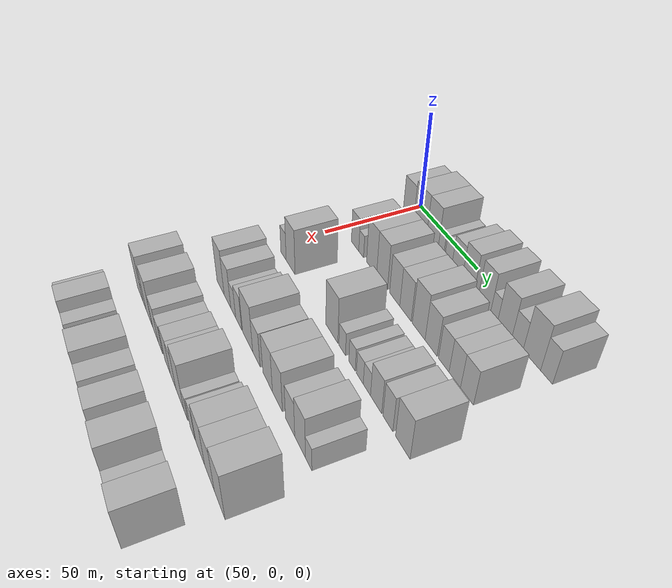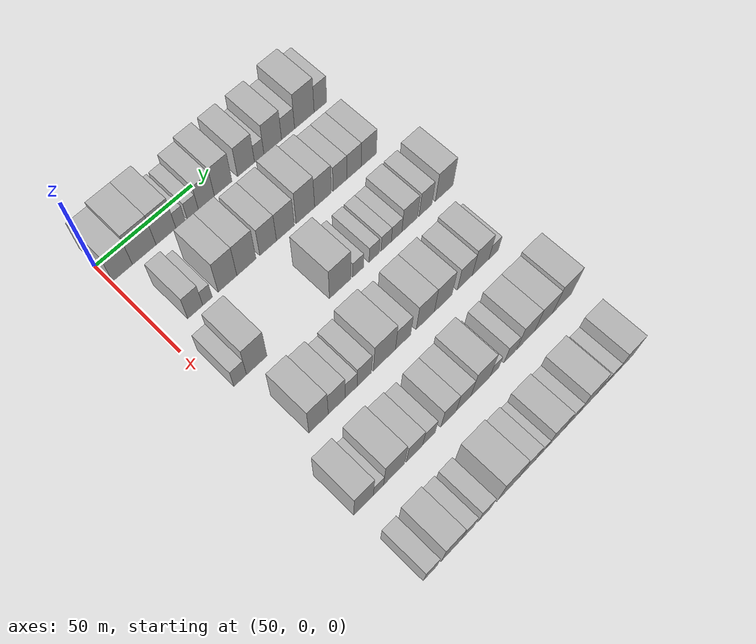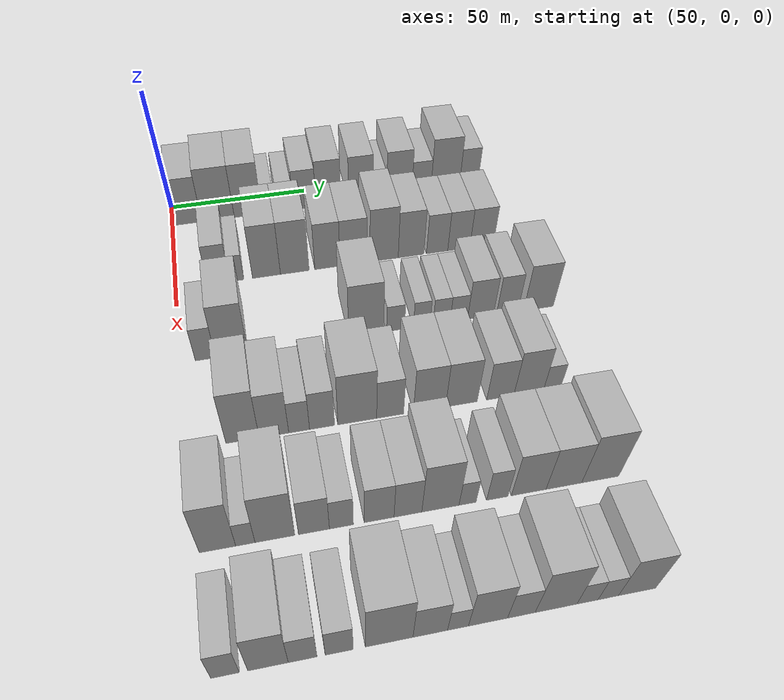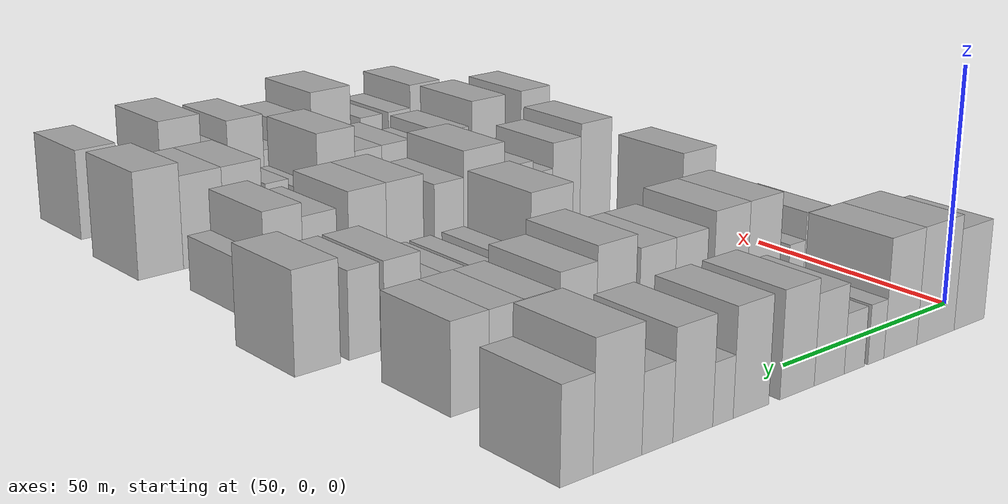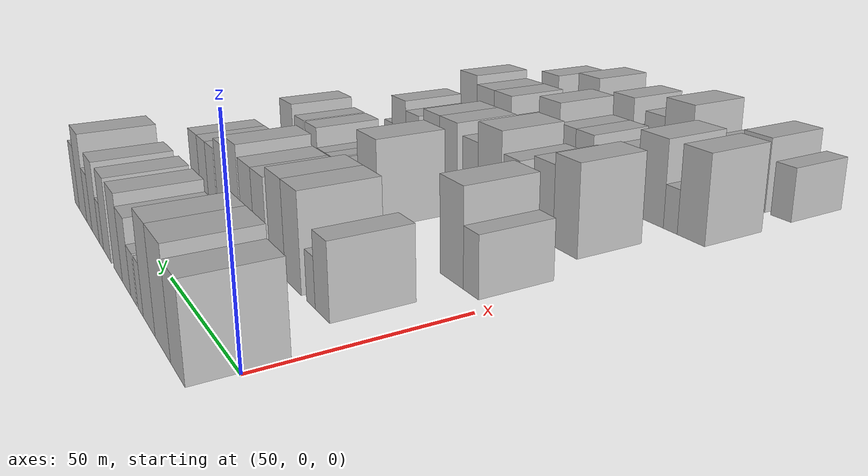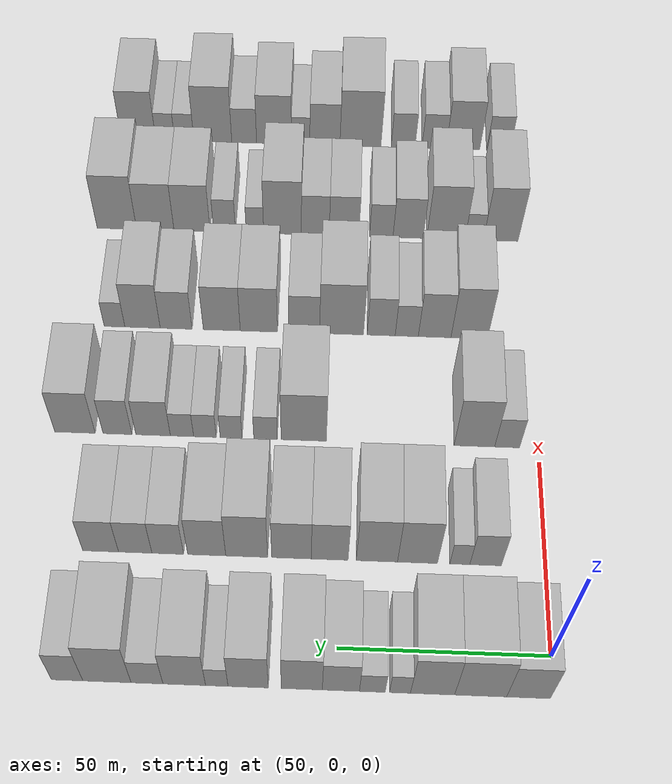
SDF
<sdf version="1.6">
 <world name="default">
  <model name="building_62">
   <static>1</static>
   <pose>50.0000 5.6980 0 0.000000 0.000000 0.000000</pose>
   <link name="link">
    <pose>0 0 10.50 0 0 0</pose>
    <collision name="collision"><geometry><box><size>20.0000 10.0300 21.0000</size></box></geometry></collision>
    <visual name="visual">
     <cast_shadows>0</cast_shadows>
     <geometry><box><size>20.0000 10.0300 21.0000</size></box></geometry>
     <material>
      <script>
       <uri>model://HANNAS_wall/materials/scripts</uri>
       <uri>model://HANNAS_wall/materials/textures</uri>
       <name>vrc/HANNAS_wall</name>
      </script>
     </material>
    </visual>
   </link>
  </model>
  <model name="building_63">
   <static>1</static>
   <pose>50.0000 16.6982 0 0.000000 0.000000 0.000000</pose>
   <link name="link">
    <pose>0 0 12.00 0 0 0</pose>
    <collision name="collision"><geometry><box><size>20.0000 11.9703 24.0000</size></box></geometry></collision>
    <visual name="visual">
     <cast_shadows>0</cast_shadows>
     <geometry><box><size>20.0000 11.9703 24.0000</size></box></geometry>
     <material>
      <script>
       <uri>model://HANNAS_wall/materials/scripts</uri>
       <uri>model://HANNAS_wall/materials/textures</uri>
       <name>vrc/HANNAS_wall</name>
      </script>
     </material>
    </visual>
   </link>
  </model>
  <model name="building_64">
   <static>1</static>
   <pose>50.0000 27.7714 0 0.000000 0.000000 0.000000</pose>
   <link name="link">
    <pose>0 0 12.00 0 0 0</pose>
    <collision name="collision"><geometry><box><size>20.0000 10.1760 24.0000</size></box></geometry></collision>
    <visual name="visual">
     <cast_shadows>0</cast_shadows>
     <geometry><box><size>20.0000 10.1760 24.0000</size></box></geometry>
     <material>
      <script>
       <uri>model://HANNAS_wall/materials/scripts</uri>
       <uri>model://HANNAS_wall/materials/textures</uri>
       <name>vrc/HANNAS_wall</name>
      </script>
     </material>
    </visual>
   </link>
  </model>
  <model name="building_65">
   <static>1</static>
   <pose>50.0000 35.2730 0 0.000000 0.000000 0.000000</pose>
   <link name="link">
    <pose>0 0 6.00 0 0 0</pose>
    <collision name="collision"><geometry><box><size>20.0000 4.8272 12.0000</size></box></geometry></collision>
    <visual name="visual">
     <cast_shadows>0</cast_shadows>
     <geometry><box><size>20.0000 4.8272 12.0000</size></box></geometry>
     <material>
      <script>
       <uri>model://HANNAS_wall/materials/scripts</uri>
       <uri>model://HANNAS_wall/materials/textures</uri>
       <name>vrc/HANNAS_wall</name>
      </script>
     </material>
    </visual>
   </link>
  </model>
  <model name="building_66">
   <static>1</static>
   <pose>50.0000 41.6578 0 0.000000 0.000000 0.000000</pose>
   <link name="link">
    <pose>0 0 6.00 0 0 0</pose>
    <collision name="collision"><geometry><box><size>20.0000 5.9424 12.0000</size></box></geometry></collision>
    <visual name="visual">
     <cast_shadows>0</cast_shadows>
     <geometry><box><size>20.0000 5.9424 12.0000</size></box></geometry>
     <material>
      <script>
       <uri>model://HANNAS_wall/materials/scripts</uri>
       <uri>model://HANNAS_wall/materials/textures</uri>
       <name>vrc/HANNAS_wall</name>
      </script>
     </material>
    </visual>
   </link>
  </model>
  <model name="building_67">
   <static>1</static>
   <pose>50.0000 48.9102 0 0.000000 0.000000 0.000000</pose>
   <link name="link">
    <pose>0 0 9.00 0 0 0</pose>
    <collision name="collision"><geometry><box><size>20.0000 8.5623 18.0000</size></box></geometry></collision>
    <visual name="visual">
     <cast_shadows>0</cast_shadows>
     <geometry><box><size>20.0000 8.5623 18.0000</size></box></geometry>
     <material>
      <script>
       <uri>model://HANNAS_wall/materials/scripts</uri>
       <uri>model://HANNAS_wall/materials/textures</uri>
       <name>vrc/HANNAS_wall</name>
      </script>
     </material>
    </visual>
   </link>
  </model>
  <model name="building_68">
   <static>1</static>
   <pose>50.0000 57.9190 0 0.000000 0.000000 0.000000</pose>
   <link name="link">
    <pose>0 0 10.50 0 0 0</pose>
    <collision name="collision"><geometry><box><size>20.0000 9.4554 21.0000</size></box></geometry></collision>
    <visual name="visual">
     <cast_shadows>0</cast_shadows>
     <geometry><box><size>20.0000 9.4554 21.0000</size></box></geometry>
     <material>
      <script>
       <uri>model://HANNAS_wall/materials/scripts</uri>
       <uri>model://HANNAS_wall/materials/textures</uri>
       <name>vrc/HANNAS_wall</name>
      </script>
     </material>
    </visual>
   </link>
  </model>
  <model name="building_69">
   <static>1</static>
   <pose>50.0000 70.3135 0 0.000000 0.000000 0.000000</pose>
   <link name="link">
    <pose>0 0 10.50 0 0 0</pose>
    <collision name="collision"><geometry><box><size>20.0000 9.3337 21.0000</size></box></geometry></collision>
    <visual name="visual">
     <cast_shadows>0</cast_shadows>
     <geometry><box><size>20.0000 9.3337 21.0000</size></box></geometry>
     <material>
      <script>
       <uri>model://HANNAS_wall/materials/scripts</uri>
       <uri>model://HANNAS_wall/materials/textures</uri>
       <name>vrc/HANNAS_wall</name>
      </script>
     </material>
    </visual>
   </link>
  </model>
  <model name="building_70">
   <static>1</static>
   <pose>50.0000 77.5870 0 0.000000 0.000000 0.000000</pose>
   <link name="link">
    <pose>0 0 6.00 0 0 0</pose>
    <collision name="collision"><geometry><box><size>20.0000 5.2133 12.0000</size></box></geometry></collision>
    <visual name="visual">
     <cast_shadows>0</cast_shadows>
     <geometry><box><size>20.0000 5.2133 12.0000</size></box></geometry>
     <material>
      <script>
       <uri>model://HANNAS_wall/materials/scripts</uri>
       <uri>model://HANNAS_wall/materials/textures</uri>
       <name>vrc/HANNAS_wall</name>
      </script>
     </material>
    </visual>
   </link>
  </model>
  <model name="building_71">
   <static>1</static>
   <pose>50.0000 85.1204 0 0.000000 0.000000 0.000000</pose>
   <link name="link">
    <pose>0 0 10.50 0 0 0</pose>
    <collision name="collision"><geometry><box><size>20.0000 9.8534 21.0000</size></box></geometry></collision>
    <visual name="visual">
     <cast_shadows>0</cast_shadows>
     <geometry><box><size>20.0000 9.8534 21.0000</size></box></geometry>
     <material>
      <script>
       <uri>model://HANNAS_wall/materials/scripts</uri>
       <uri>model://HANNAS_wall/materials/textures</uri>
       <name>vrc/HANNAS_wall</name>
      </script>
     </material>
    </visual>
   </link>
  </model>
  <model name="building_72">
   <static>1</static>
   <pose>50.0000 93.7477 0 0.000000 0.000000 0.000000</pose>
   <link name="link">
    <pose>0 0 7.50 0 0 0</pose>
    <collision name="collision"><geometry><box><size>20.0000 7.4013 15.0000</size></box></geometry></collision>
    <visual name="visual">
     <cast_shadows>0</cast_shadows>
     <geometry><box><size>20.0000 7.4013 15.0000</size></box></geometry>
     <material>
      <script>
       <uri>model://HANNAS_wall/materials/scripts</uri>
       <uri>model://HANNAS_wall/materials/textures</uri>
       <name>vrc/HANNAS_wall</name>
      </script>
     </material>
    </visual>
   </link>
  </model>
  <model name="building_73">
   <static>1</static>
   <pose>50.0000 103.0483 0 0.000000 0.000000 0.000000</pose>
   <link name="link">
    <pose>0 0 12.00 0 0 0</pose>
    <collision name="collision"><geometry><box><size>20.0000 11.1998 24.0000</size></box></geometry></collision>
    <visual name="visual">
     <cast_shadows>0</cast_shadows>
     <geometry><box><size>20.0000 11.1998 24.0000</size></box></geometry>
     <material>
      <script>
       <uri>model://HANNAS_wall/materials/scripts</uri>
       <uri>model://HANNAS_wall/materials/textures</uri>
       <name>vrc/HANNAS_wall</name>
      </script>
     </material>
    </visual>
   </link>
  </model>
  <model name="building_74">
   <static>1</static>
   <pose>50.0000 112.3041 0 0.000000 0.000000 0.000000</pose>
   <link name="link">
    <pose>0 0 9.00 0 0 0</pose>
    <collision name="collision"><geometry><box><size>20.0000 7.3119 18.0000</size></box></geometry></collision>
    <visual name="visual">
     <cast_shadows>0</cast_shadows>
     <geometry><box><size>20.0000 7.3119 18.0000</size></box></geometry>
     <material>
      <script>
       <uri>model://HANNAS_wall/materials/scripts</uri>
       <uri>model://HANNAS_wall/materials/textures</uri>
       <name>vrc/HANNAS_wall</name>
      </script>
     </material>
    </visual>
   </link>
  </model>
  <model name="building_183">
   <static>1</static>
   <pose>82.0000 14.5404 0 0.000000 0.000000 0.000000</pose>
   <link name="link">
    <pose>0 0 9.00 0 0 0</pose>
    <collision name="collision"><geometry><box><size>20.0000 7.6131 18.0000</size></box></geometry></collision>
    <visual name="visual">
     <cast_shadows>0</cast_shadows>
     <geometry><box><size>20.0000 7.6131 18.0000</size></box></geometry>
     <material>
      <script>
       <uri>model://HANNAS_wall/materials/scripts</uri>
       <uri>model://HANNAS_wall/materials/textures</uri>
       <name>vrc/HANNAS_wall</name>
      </script>
     </material>
    </visual>
   </link>
  </model>
  <model name="building_184">
   <static>1</static>
   <pose>82.0000 20.7653 0 0.000000 0.000000 0.000000</pose>
   <link name="link">
    <pose>0 0 6.00 0 0 0</pose>
    <collision name="collision"><geometry><box><size>20.0000 4.8366 12.0000</size></box></geometry></collision>
    <visual name="visual">
     <cast_shadows>0</cast_shadows>
     <geometry><box><size>20.0000 4.8366 12.0000</size></box></geometry>
     <material>
      <script>
       <uri>model://HANNAS_wall/materials/scripts</uri>
       <uri>model://HANNAS_wall/materials/textures</uri>
       <name>vrc/HANNAS_wall</name>
      </script>
     </material>
    </visual>
   </link>
  </model>
  <model name="building_185">
   <static>1</static>
   <pose>82.0000 31.0296 0 0.000000 0.000000 0.000000</pose>
   <link name="link">
    <pose>0 0 12.00 0 0 0</pose>
    <collision name="collision"><geometry><box><size>20.0000 9.6920 24.0000</size></box></geometry></collision>
    <visual name="visual">
     <cast_shadows>0</cast_shadows>
     <geometry><box><size>20.0000 9.6920 24.0000</size></box></geometry>
     <material>
      <script>
       <uri>model://HANNAS_wall/materials/scripts</uri>
       <uri>model://HANNAS_wall/materials/textures</uri>
       <name>vrc/HANNAS_wall</name>
      </script>
     </material>
    </visual>
   </link>
  </model>
  <model name="building_186">
   <static>1</static>
   <pose>82.0000 40.8764 0 0.000000 0.000000 0.000000</pose>
   <link name="link">
    <pose>0 0 12.00 0 0 0</pose>
    <collision name="collision"><geometry><box><size>20.0000 10.0015 24.0000</size></box></geometry></collision>
    <visual name="visual">
     <cast_shadows>0</cast_shadows>
     <geometry><box><size>20.0000 10.0015 24.0000</size></box></geometry>
     <material>
      <script>
       <uri>model://HANNAS_wall/materials/scripts</uri>
       <uri>model://HANNAS_wall/materials/textures</uri>
       <name>vrc/HANNAS_wall</name>
      </script>
     </material>
    </visual>
   </link>
  </model>
  <model name="building_187">
   <static>1</static>
   <pose>82.0000 52.3401 0 0.000000 0.000000 0.000000</pose>
   <link name="link">
    <pose>0 0 10.50 0 0 0</pose>
    <collision name="collision"><geometry><box><size>20.0000 8.9261 21.0000</size></box></geometry></collision>
    <visual name="visual">
     <cast_shadows>0</cast_shadows>
     <geometry><box><size>20.0000 8.9261 21.0000</size></box></geometry>
     <material>
      <script>
       <uri>model://HANNAS_wall/materials/scripts</uri>
       <uri>model://HANNAS_wall/materials/textures</uri>
       <name>vrc/HANNAS_wall</name>
      </script>
     </material>
    </visual>
   </link>
  </model>
  <model name="building_188">
   <static>1</static>
   <pose>82.0000 61.6002 0 0.000000 0.000000 0.000000</pose>
   <link name="link">
    <pose>0 0 10.50 0 0 0</pose>
    <collision name="collision"><geometry><box><size>20.0000 9.5939 21.0000</size></box></geometry></collision>
    <visual name="visual">
     <cast_shadows>0</cast_shadows>
     <geometry><box><size>20.0000 9.5939 21.0000</size></box></geometry>
     <material>
      <script>
       <uri>model://HANNAS_wall/materials/scripts</uri>
       <uri>model://HANNAS_wall/materials/textures</uri>
       <name>vrc/HANNAS_wall</name>
      </script>
     </material>
    </visual>
   </link>
  </model>
  <model name="building_189">
   <static>1</static>
   <pose>82.0000 72.4950 0 0.000000 0.000000 0.000000</pose>
   <link name="link">
    <pose>0 0 12.00 0 0 0</pose>
    <collision name="collision"><geometry><box><size>20.0000 10.1958 24.0000</size></box></geometry></collision>
    <visual name="visual">
     <cast_shadows>0</cast_shadows>
     <geometry><box><size>20.0000 10.1958 24.0000</size></box></geometry>
     <material>
      <script>
       <uri>model://HANNAS_wall/materials/scripts</uri>
       <uri>model://HANNAS_wall/materials/textures</uri>
       <name>vrc/HANNAS_wall</name>
      </script>
     </material>
    </visual>
   </link>
  </model>
  <model name="building_190">
   <static>1</static>
   <pose>82.0000 82.2299 0 0.000000 0.000000 0.000000</pose>
   <link name="link">
    <pose>0 0 10.50 0 0 0</pose>
    <collision name="collision"><geometry><box><size>20.0000 9.2740 21.0000</size></box></geometry></collision>
    <visual name="visual">
     <cast_shadows>0</cast_shadows>
     <geometry><box><size>20.0000 9.2740 21.0000</size></box></geometry>
     <material>
      <script>
       <uri>model://HANNAS_wall/materials/scripts</uri>
       <uri>model://HANNAS_wall/materials/textures</uri>
       <name>vrc/HANNAS_wall</name>
      </script>
     </material>
    </visual>
   </link>
  </model>
  <model name="building_191">
   <static>1</static>
   <pose>82.0000 91.7429 0 0.000000 0.000000 0.000000</pose>
   <link name="link">
    <pose>0 0 9.00 0 0 0</pose>
    <collision name="collision"><geometry><box><size>20.0000 7.7518 18.0000</size></box></geometry></collision>
    <visual name="visual">
     <cast_shadows>0</cast_shadows>
     <geometry><box><size>20.0000 7.7518 18.0000</size></box></geometry>
     <material>
      <script>
       <uri>model://HANNAS_wall/materials/scripts</uri>
       <uri>model://HANNAS_wall/materials/textures</uri>
       <name>vrc/HANNAS_wall</name>
      </script>
     </material>
    </visual>
   </link>
  </model>
  <model name="building_192">
   <static>1</static>
   <pose>82.0000 99.6893 0 0.000000 0.000000 0.000000</pose>
   <link name="link">
    <pose>0 0 9.00 0 0 0</pose>
    <collision name="collision"><geometry><box><size>20.0000 8.1411 18.0000</size></box></geometry></collision>
    <visual name="visual">
     <cast_shadows>0</cast_shadows>
     <geometry><box><size>20.0000 8.1411 18.0000</size></box></geometry>
     <material>
      <script>
       <uri>model://HANNAS_wall/materials/scripts</uri>
       <uri>model://HANNAS_wall/materials/textures</uri>
       <name>vrc/HANNAS_wall</name>
      </script>
     </material>
    </visual>
   </link>
  </model>
  <model name="building_193">
   <static>1</static>
   <pose>82.0000 108.1332 0 0.000000 0.000000 0.000000</pose>
   <link name="link">
    <pose>0 0 9.00 0 0 0</pose>
    <collision name="collision"><geometry><box><size>20.0000 8.7468 18.0000</size></box></geometry></collision>
    <visual name="visual">
     <cast_shadows>0</cast_shadows>
     <geometry><box><size>20.0000 8.7468 18.0000</size></box></geometry>
     <material>
      <script>
       <uri>model://HANNAS_wall/materials/scripts</uri>
       <uri>model://HANNAS_wall/materials/textures</uri>
       <name>vrc/HANNAS_wall</name>
      </script>
     </material>
    </visual>
   </link>
  </model>
  <model name="building_312">
   <static>1</static>
   <pose>114.0000 8.0338 0 0.000000 0.000000 0.000000</pose>
   <link name="link">
    <pose>0 0 7.50 0 0 0</pose>
    <collision name="collision"><geometry><box><size>20.0000 6.3263 15.0000</size></box></geometry></collision>
    <visual name="visual">
     <cast_shadows>0</cast_shadows>
     <geometry><box><size>20.0000 6.3263 15.0000</size></box></geometry>
     <material>
      <script>
       <uri>model://HANNAS_wall/materials/scripts</uri>
       <uri>model://HANNAS_wall/materials/textures</uri>
       <name>vrc/HANNAS_wall</name>
      </script>
     </material>
    </visual>
   </link>
  </model>
  <model name="building_313">
   <static>1</static>
   <pose>114.0000 16.3514 0 0.000000 0.000000 0.000000</pose>
   <link name="link">
    <pose>0 0 12.00 0 0 0</pose>
    <collision name="collision"><geometry><box><size>20.0000 10.3089 24.0000</size></box></geometry></collision>
    <visual name="visual">
     <cast_shadows>0</cast_shadows>
     <geometry><box><size>20.0000 10.3089 24.0000</size></box></geometry>
     <material>
      <script>
       <uri>model://HANNAS_wall/materials/scripts</uri>
       <uri>model://HANNAS_wall/materials/textures</uri>
       <name>vrc/HANNAS_wall</name>
      </script>
     </material>
    </visual>
   </link>
  </model>
  <model name="building_314">
   <static>1</static>
   <pose>114.0000 59.7876 0 0.000000 0.000000 0.000000</pose>
   <link name="link">
    <pose>0 0 12.00 0 0 0</pose>
    <collision name="collision"><geometry><box><size>20.0000 11.5212 24.0000</size></box></geometry></collision>
    <visual name="visual">
     <cast_shadows>0</cast_shadows>
     <geometry><box><size>20.0000 11.5212 24.0000</size></box></geometry>
     <material>
      <script>
       <uri>model://HANNAS_wall/materials/scripts</uri>
       <uri>model://HANNAS_wall/materials/textures</uri>
       <name>vrc/HANNAS_wall</name>
      </script>
     </material>
    </visual>
   </link>
  </model>
  <model name="building_315">
   <static>1</static>
   <pose>114.0000 69.5327 0 0.000000 0.000000 0.000000</pose>
   <link name="link">
    <pose>0 0 6.00 0 0 0</pose>
    <collision name="collision"><geometry><box><size>20.0000 5.9689 12.0000</size></box></geometry></collision>
    <visual name="visual">
     <cast_shadows>0</cast_shadows>
     <geometry><box><size>20.0000 5.9689 12.0000</size></box></geometry>
     <material>
      <script>
       <uri>model://HANNAS_wall/materials/scripts</uri>
       <uri>model://HANNAS_wall/materials/textures</uri>
       <name>vrc/HANNAS_wall</name>
      </script>
     </material>
    </visual>
   </link>
  </model>
  <model name="building_316">
   <static>1</static>
   <pose>114.0000 78.3164 0 0.000000 0.000000 0.000000</pose>
   <link name="link">
    <pose>0 0 6.00 0 0 0</pose>
    <collision name="collision"><geometry><box><size>20.0000 5.5986 12.0000</size></box></geometry></collision>
    <visual name="visual">
     <cast_shadows>0</cast_shadows>
     <geometry><box><size>20.0000 5.5986 12.0000</size></box></geometry>
     <material>
      <script>
       <uri>model://HANNAS_wall/materials/scripts</uri>
       <uri>model://HANNAS_wall/materials/textures</uri>
       <name>vrc/HANNAS_wall</name>
      </script>
     </material>
    </visual>
   </link>
  </model>
  <model name="building_317">
   <static>1</static>
   <pose>114.0000 85.0175 0 0.000000 0.000000 0.000000</pose>
   <link name="link">
    <pose>0 0 6.00 0 0 0</pose>
    <collision name="collision"><geometry><box><size>20.0000 5.8034 12.0000</size></box></geometry></collision>
    <visual name="visual">
     <cast_shadows>0</cast_shadows>
     <geometry><box><size>20.0000 5.8034 12.0000</size></box></geometry>
     <material>
      <script>
       <uri>model://HANNAS_wall/materials/scripts</uri>
       <uri>model://HANNAS_wall/materials/textures</uri>
       <name>vrc/HANNAS_wall</name>
      </script>
     </material>
    </visual>
   </link>
  </model>
  <model name="building_318">
   <static>1</static>
   <pose>114.0000 90.8932 0 0.000000 0.000000 0.000000</pose>
   <link name="link">
    <pose>0 0 6.00 0 0 0</pose>
    <collision name="collision"><geometry><box><size>20.0000 5.9481 12.0000</size></box></geometry></collision>
    <visual name="visual">
     <cast_shadows>0</cast_shadows>
     <geometry><box><size>20.0000 5.9481 12.0000</size></box></geometry>
     <material>
      <script>
       <uri>model://HANNAS_wall/materials/scripts</uri>
       <uri>model://HANNAS_wall/materials/textures</uri>
       <name>vrc/HANNAS_wall</name>
      </script>
     </material>
    </visual>
   </link>
  </model>
  <model name="building_319">
   <static>1</static>
   <pose>114.0000 98.2979 0 0.000000 0.000000 0.000000</pose>
   <link name="link">
    <pose>0 0 9.00 0 0 0</pose>
    <collision name="collision"><geometry><box><size>20.0000 8.8612 18.0000</size></box></geometry></collision>
    <visual name="visual">
     <cast_shadows>0</cast_shadows>
     <geometry><box><size>20.0000 8.8612 18.0000</size></box></geometry>
     <material>
      <script>
       <uri>model://HANNAS_wall/materials/scripts</uri>
       <uri>model://HANNAS_wall/materials/textures</uri>
       <name>vrc/HANNAS_wall</name>
      </script>
     </material>
    </visual>
   </link>
  </model>
  <model name="building_320">
   <static>1</static>
   <pose>114.0000 107.4354 0 0.000000 0.000000 0.000000</pose>
   <link name="link">
    <pose>0 0 9.00 0 0 0</pose>
    <collision name="collision"><geometry><box><size>20.0000 7.4138 18.0000</size></box></geometry></collision>
    <visual name="visual">
     <cast_shadows>0</cast_shadows>
     <geometry><box><size>20.0000 7.4138 18.0000</size></box></geometry>
     <material>
      <script>
       <uri>model://HANNAS_wall/materials/scripts</uri>
       <uri>model://HANNAS_wall/materials/textures</uri>
       <name>vrc/HANNAS_wall</name>
      </script>
     </material>
    </visual>
   </link>
  </model>
  <model name="building_321">
   <static>1</static>
   <pose>114.0000 118.3404 0 0.000000 0.000000 0.000000</pose>
   <link name="link">
    <pose>0 0 10.50 0 0 0</pose>
    <collision name="collision"><geometry><box><size>20.0000 10.3962 21.0000</size></box></geometry></collision>
    <visual name="visual">
     <cast_shadows>0</cast_shadows>
     <geometry><box><size>20.0000 10.3962 21.0000</size></box></geometry>
     <material>
      <script>
       <uri>model://HANNAS_wall/materials/scripts</uri>
       <uri>model://HANNAS_wall/materials/textures</uri>
       <name>vrc/HANNAS_wall</name>
      </script>
     </material>
    </visual>
   </link>
  </model>
  <model name="building_428">
   <static>1</static>
   <pose>146.0000 16.8127 0 0.000000 0.000000 0.000000</pose>
   <link name="link">
    <pose>0 0 12.00 0 0 0</pose>
    <collision name="collision"><geometry><box><size>20.0000 9.7261 24.0000</size></box></geometry></collision>
    <visual name="visual">
     <cast_shadows>0</cast_shadows>
     <geometry><box><size>20.0000 9.7261 24.0000</size></box></geometry>
     <material>
      <script>
       <uri>model://HANNAS_wall/materials/scripts</uri>
       <uri>model://HANNAS_wall/materials/textures</uri>
       <name>vrc/HANNAS_wall</name>
      </script>
     </material>
    </visual>
   </link>
  </model>
  <model name="building_429">
   <static>1</static>
   <pose>146.0000 26.0240 0 0.000000 0.000000 0.000000</pose>
   <link name="link">
    <pose>0 0 10.50 0 0 0</pose>
    <collision name="collision"><geometry><box><size>20.0000 8.6965 21.0000</size></box></geometry></collision>
    <visual name="visual">
     <cast_shadows>0</cast_shadows>
     <geometry><box><size>20.0000 8.6965 21.0000</size></box></geometry>
     <material>
      <script>
       <uri>model://HANNAS_wall/materials/scripts</uri>
       <uri>model://HANNAS_wall/materials/textures</uri>
       <name>vrc/HANNAS_wall</name>
      </script>
     </material>
    </visual>
   </link>
  </model>
  <model name="building_430">
   <static>1</static>
   <pose>146.0000 33.4552 0 0.000000 0.000000 0.000000</pose>
   <link name="link">
    <pose>0 0 7.50 0 0 0</pose>
    <collision name="collision"><geometry><box><size>20.0000 6.1661 15.0000</size></box></geometry></collision>
    <visual name="visual">
     <cast_shadows>0</cast_shadows>
     <geometry><box><size>20.0000 6.1661 15.0000</size></box></geometry>
     <material>
      <script>
       <uri>model://HANNAS_wall/materials/scripts</uri>
       <uri>model://HANNAS_wall/materials/textures</uri>
       <name>vrc/HANNAS_wall</name>
      </script>
     </material>
    </visual>
   </link>
  </model>
  <model name="building_431">
   <static>1</static>
   <pose>146.0000 40.2717 0 0.000000 0.000000 0.000000</pose>
   <link name="link">
    <pose>0 0 9.00 0 0 0</pose>
    <collision name="collision"><geometry><box><size>20.0000 7.4668 18.0000</size></box></geometry></collision>
    <visual name="visual">
     <cast_shadows>0</cast_shadows>
     <geometry><box><size>20.0000 7.4668 18.0000</size></box></geometry>
     <material>
      <script>
       <uri>model://HANNAS_wall/materials/scripts</uri>
       <uri>model://HANNAS_wall/materials/textures</uri>
       <name>vrc/HANNAS_wall</name>
      </script>
     </material>
    </visual>
   </link>
  </model>
  <model name="building_432">
   <static>1</static>
   <pose>146.0000 50.8650 0 0.000000 0.000000 0.000000</pose>
   <link name="link">
    <pose>0 0 12.00 0 0 0</pose>
    <collision name="collision"><geometry><box><size>20.0000 11.7198 24.0000</size></box></geometry></collision>
    <visual name="visual">
     <cast_shadows>0</cast_shadows>
     <geometry><box><size>20.0000 11.7198 24.0000</size></box></geometry>
     <material>
      <script>
       <uri>model://HANNAS_wall/materials/scripts</uri>
       <uri>model://HANNAS_wall/materials/textures</uri>
       <name>vrc/HANNAS_wall</name>
      </script>
     </material>
    </visual>
   </link>
  </model>
  <model name="building_433">
   <static>1</static>
   <pose>146.0000 60.8373 0 0.000000 0.000000 0.000000</pose>
   <link name="link">
    <pose>0 0 9.00 0 0 0</pose>
    <collision name="collision"><geometry><box><size>20.0000 8.2250 18.0000</size></box></geometry></collision>
    <visual name="visual">
     <cast_shadows>0</cast_shadows>
     <geometry><box><size>20.0000 8.2250 18.0000</size></box></geometry>
     <material>
      <script>
       <uri>model://HANNAS_wall/materials/scripts</uri>
       <uri>model://HANNAS_wall/materials/textures</uri>
       <name>vrc/HANNAS_wall</name>
      </script>
     </material>
    </visual>
   </link>
  </model>
  <model name="building_434">
   <static>1</static>
   <pose>146.0000 72.9304 0 0.000000 0.000000 0.000000</pose>
   <link name="link">
    <pose>0 0 10.50 0 0 0</pose>
    <collision name="collision"><geometry><box><size>20.0000 9.9611 21.0000</size></box></geometry></collision>
    <visual name="visual">
     <cast_shadows>0</cast_shadows>
     <geometry><box><size>20.0000 9.9611 21.0000</size></box></geometry>
     <material>
      <script>
       <uri>model://HANNAS_wall/materials/scripts</uri>
       <uri>model://HANNAS_wall/materials/textures</uri>
       <name>vrc/HANNAS_wall</name>
      </script>
     </material>
    </visual>
   </link>
  </model>
  <model name="building_435">
   <static>1</static>
   <pose>146.0000 82.8587 0 0.000000 0.000000 0.000000</pose>
   <link name="link">
    <pose>0 0 10.50 0 0 0</pose>
    <collision name="collision"><geometry><box><size>20.0000 9.8955 21.0000</size></box></geometry></collision>
    <visual name="visual">
     <cast_shadows>0</cast_shadows>
     <geometry><box><size>20.0000 9.8955 21.0000</size></box></geometry>
     <material>
      <script>
       <uri>model://HANNAS_wall/materials/scripts</uri>
       <uri>model://HANNAS_wall/materials/textures</uri>
       <name>vrc/HANNAS_wall</name>
      </script>
     </material>
    </visual>
   </link>
  </model>
  <model name="building_436">
   <static>1</static>
   <pose>146.0000 95.0895 0 0.000000 0.000000 0.000000</pose>
   <link name="link">
    <pose>0 0 9.00 0 0 0</pose>
    <collision name="collision"><geometry><box><size>20.0000 8.5661 18.0000</size></box></geometry></collision>
    <visual name="visual">
     <cast_shadows>0</cast_shadows>
     <geometry><box><size>20.0000 8.5661 18.0000</size></box></geometry>
     <material>
      <script>
       <uri>model://HANNAS_wall/materials/scripts</uri>
       <uri>model://HANNAS_wall/materials/textures</uri>
       <name>vrc/HANNAS_wall</name>
      </script>
     </material>
    </visual>
   </link>
  </model>
  <model name="building_437">
   <static>1</static>
   <pose>146.0000 104.1161 0 0.000000 0.000000 0.000000</pose>
   <link name="link">
    <pose>0 0 10.50 0 0 0</pose>
    <collision name="collision"><geometry><box><size>20.0000 9.4870 21.0000</size></box></geometry></collision>
    <visual name="visual">
     <cast_shadows>0</cast_shadows>
     <geometry><box><size>20.0000 9.4870 21.0000</size></box></geometry>
     <material>
      <script>
       <uri>model://HANNAS_wall/materials/scripts</uri>
       <uri>model://HANNAS_wall/materials/textures</uri>
       <name>vrc/HANNAS_wall</name>
      </script>
     </material>
    </visual>
   </link>
  </model>
  <model name="building_438">
   <static>1</static>
   <pose>146.0000 111.6367 0 0.000000 0.000000 0.000000</pose>
   <link name="link">
    <pose>0 0 6.00 0 0 0</pose>
    <collision name="collision"><geometry><box><size>20.0000 5.5542 12.0000</size></box></geometry></collision>
    <visual name="visual">
     <cast_shadows>0</cast_shadows>
     <geometry><box><size>20.0000 5.5542 12.0000</size></box></geometry>
     <material>
      <script>
       <uri>model://HANNAS_wall/materials/scripts</uri>
       <uri>model://HANNAS_wall/materials/textures</uri>
       <name>vrc/HANNAS_wall</name>
      </script>
     </material>
    </visual>
   </link>
  </model>
  <model name="building_542">
   <static>1</static>
   <pose>178.0000 7.2225 0 0.000000 0.000000 0.000000</pose>
   <link name="link">
    <pose>0 0 12.00 0 0 0</pose>
    <collision name="collision"><geometry><box><size>20.0000 9.6025 24.0000</size></box></geometry></collision>
    <visual name="visual">
     <cast_shadows>0</cast_shadows>
     <geometry><box><size>20.0000 9.6025 24.0000</size></box></geometry>
     <material>
      <script>
       <uri>model://HANNAS_wall/materials/scripts</uri>
       <uri>model://HANNAS_wall/materials/textures</uri>
       <name>vrc/HANNAS_wall</name>
      </script>
     </material>
    </visual>
   </link>
  </model>
  <model name="building_543">
   <static>1</static>
   <pose>178.0000 14.5876 0 0.000000 0.000000 0.000000</pose>
   <link name="link">
    <pose>0 0 6.00 0 0 0</pose>
    <collision name="collision"><geometry><box><size>20.0000 5.1278 12.0000</size></box></geometry></collision>
    <visual name="visual">
     <cast_shadows>0</cast_shadows>
     <geometry><box><size>20.0000 5.1278 12.0000</size></box></geometry>
     <material>
      <script>
       <uri>model://HANNAS_wall/materials/scripts</uri>
       <uri>model://HANNAS_wall/materials/textures</uri>
       <name>vrc/HANNAS_wall</name>
      </script>
     </material>
    </visual>
   </link>
  </model>
  <model name="building_544">
   <static>1</static>
   <pose>178.0000 22.4766 0 0.000000 0.000000 0.000000</pose>
   <link name="link">
    <pose>0 0 12.00 0 0 0</pose>
    <collision name="collision"><geometry><box><size>20.0000 10.6501 24.0000</size></box></geometry></collision>
    <visual name="visual">
     <cast_shadows>0</cast_shadows>
     <geometry><box><size>20.0000 10.6501 24.0000</size></box></geometry>
     <material>
      <script>
       <uri>model://HANNAS_wall/materials/scripts</uri>
       <uri>model://HANNAS_wall/materials/textures</uri>
       <name>vrc/HANNAS_wall</name>
      </script>
     </material>
    </visual>
   </link>
  </model>
  <model name="building_545">
   <static>1</static>
   <pose>178.0000 32.9993 0 0.000000 0.000000 0.000000</pose>
   <link name="link">
    <pose>0 0 9.00 0 0 0</pose>
    <collision name="collision"><geometry><box><size>20.0000 8.3952 18.0000</size></box></geometry></collision>
    <visual name="visual">
     <cast_shadows>0</cast_shadows>
     <geometry><box><size>20.0000 8.3952 18.0000</size></box></geometry>
     <material>
      <script>
       <uri>model://HANNAS_wall/materials/scripts</uri>
       <uri>model://HANNAS_wall/materials/textures</uri>
       <name>vrc/HANNAS_wall</name>
      </script>
     </material>
    </visual>
   </link>
  </model>
  <model name="building_546">
   <static>1</static>
   <pose>178.0000 40.4723 0 0.000000 0.000000 0.000000</pose>
   <link name="link">
    <pose>0 0 7.50 0 0 0</pose>
    <collision name="collision"><geometry><box><size>20.0000 6.5507 15.0000</size></box></geometry></collision>
    <visual name="visual">
     <cast_shadows>0</cast_shadows>
     <geometry><box><size>20.0000 6.5507 15.0000</size></box></geometry>
     <material>
      <script>
       <uri>model://HANNAS_wall/materials/scripts</uri>
       <uri>model://HANNAS_wall/materials/textures</uri>
       <name>vrc/HANNAS_wall</name>
      </script>
     </material>
    </visual>
   </link>
  </model>
  <model name="building_547">
   <static>1</static>
   <pose>178.0000 50.8670 0 0.000000 0.000000 0.000000</pose>
   <link name="link">
    <pose>0 0 9.00 0 0 0</pose>
    <collision name="collision"><geometry><box><size>20.0000 8.2388 18.0000</size></box></geometry></collision>
    <visual name="visual">
     <cast_shadows>0</cast_shadows>
     <geometry><box><size>20.0000 8.2388 18.0000</size></box></geometry>
     <material>
      <script>
       <uri>model://HANNAS_wall/materials/scripts</uri>
       <uri>model://HANNAS_wall/materials/textures</uri>
       <name>vrc/HANNAS_wall</name>
      </script>
     </material>
    </visual>
   </link>
  </model>
  <model name="building_548">
   <static>1</static>
   <pose>178.0000 58.8713 0 0.000000 0.000000 0.000000</pose>
   <link name="link">
    <pose>0 0 9.00 0 0 0</pose>
    <collision name="collision"><geometry><box><size>20.0000 7.7697 18.0000</size></box></geometry></collision>
    <visual name="visual">
     <cast_shadows>0</cast_shadows>
     <geometry><box><size>20.0000 7.7697 18.0000</size></box></geometry>
     <material>
      <script>
       <uri>model://HANNAS_wall/materials/scripts</uri>
       <uri>model://HANNAS_wall/materials/textures</uri>
       <name>vrc/HANNAS_wall</name>
      </script>
     </material>
    </visual>
   </link>
  </model>
  <model name="building_549">
   <static>1</static>
   <pose>178.0000 68.0190 0 0.000000 0.000000 0.000000</pose>
   <link name="link">
    <pose>0 0 12.00 0 0 0</pose>
    <collision name="collision"><geometry><box><size>20.0000 10.5257 24.0000</size></box></geometry></collision>
    <visual name="visual">
     <cast_shadows>0</cast_shadows>
     <geometry><box><size>20.0000 10.5257 24.0000</size></box></geometry>
     <material>
      <script>
       <uri>model://HANNAS_wall/materials/scripts</uri>
       <uri>model://HANNAS_wall/materials/textures</uri>
       <name>vrc/HANNAS_wall</name>
      </script>
     </material>
    </visual>
   </link>
  </model>
  <model name="building_550">
   <static>1</static>
   <pose>178.0000 75.7187 0 0.000000 0.000000 0.000000</pose>
   <link name="link">
    <pose>0 0 6.00 0 0 0</pose>
    <collision name="collision"><geometry><box><size>20.0000 4.8738 12.0000</size></box></geometry></collision>
    <visual name="visual">
     <cast_shadows>0</cast_shadows>
     <geometry><box><size>20.0000 4.8738 12.0000</size></box></geometry>
     <material>
      <script>
       <uri>model://HANNAS_wall/materials/scripts</uri>
       <uri>model://HANNAS_wall/materials/textures</uri>
       <name>vrc/HANNAS_wall</name>
      </script>
     </material>
    </visual>
   </link>
  </model>
  <model name="building_551">
   <static>1</static>
   <pose>178.0000 84.2195 0 0.000000 0.000000 0.000000</pose>
   <link name="link">
    <pose>0 0 7.50 0 0 0</pose>
    <collision name="collision"><geometry><box><size>20.0000 6.1278 15.0000</size></box></geometry></collision>
    <visual name="visual">
     <cast_shadows>0</cast_shadows>
     <geometry><box><size>20.0000 6.1278 15.0000</size></box></geometry>
     <material>
      <script>
       <uri>model://HANNAS_wall/materials/scripts</uri>
       <uri>model://HANNAS_wall/materials/textures</uri>
       <name>vrc/HANNAS_wall</name>
      </script>
     </material>
    </visual>
   </link>
  </model>
  <model name="building_552">
   <static>1</static>
   <pose>178.0000 93.3422 0 0.000000 0.000000 0.000000</pose>
   <link name="link">
    <pose>0 0 10.50 0 0 0</pose>
    <collision name="collision"><geometry><box><size>20.0000 10.1176 21.0000</size></box></geometry></collision>
    <visual name="visual">
     <cast_shadows>0</cast_shadows>
     <geometry><box><size>20.0000 10.1176 21.0000</size></box></geometry>
     <material>
      <script>
       <uri>model://HANNAS_wall/materials/scripts</uri>
       <uri>model://HANNAS_wall/materials/textures</uri>
       <name>vrc/HANNAS_wall</name>
      </script>
     </material>
    </visual>
   </link>
  </model>
  <model name="building_553">
   <static>1</static>
   <pose>178.0000 103.6470 0 0.000000 0.000000 0.000000</pose>
   <link name="link">
    <pose>0 0 10.50 0 0 0</pose>
    <collision name="collision"><geometry><box><size>20.0000 10.4919 21.0000</size></box></geometry></collision>
    <visual name="visual">
     <cast_shadows>0</cast_shadows>
     <geometry><box><size>20.0000 10.4919 21.0000</size></box></geometry>
     <material>
      <script>
       <uri>model://HANNAS_wall/materials/scripts</uri>
       <uri>model://HANNAS_wall/materials/textures</uri>
       <name>vrc/HANNAS_wall</name>
      </script>
     </material>
    </visual>
   </link>
  </model>
  <model name="building_554">
   <static>1</static>
   <pose>178.0000 114.4274 0 0.000000 0.000000 0.000000</pose>
   <link name="link">
    <pose>0 0 12.00 0 0 0</pose>
    <collision name="collision"><geometry><box><size>20.0000 11.0690 24.0000</size></box></geometry></collision>
    <visual name="visual">
     <cast_shadows>0</cast_shadows>
     <geometry><box><size>20.0000 11.0690 24.0000</size></box></geometry>
     <material>
      <script>
       <uri>model://HANNAS_wall/materials/scripts</uri>
       <uri>model://HANNAS_wall/materials/textures</uri>
       <name>vrc/HANNAS_wall</name>
      </script>
     </material>
    </visual>
   </link>
  </model>
  <model name="building_658">
   <static>1</static>
   <pose>210.0000 6.6925 0 0.000000 0.000000 0.000000</pose>
   <link name="link">
    <pose>0 0 7.50 0 0 0</pose>
    <collision name="collision"><geometry><box><size>20.0000 6.8062 15.0000</size></box></geometry></collision>
    <visual name="visual">
     <cast_shadows>0</cast_shadows>
     <geometry><box><size>20.0000 6.8062 15.0000</size></box></geometry>
     <material>
      <script>
       <uri>model://HANNAS_wall/materials/scripts</uri>
       <uri>model://HANNAS_wall/materials/textures</uri>
       <name>vrc/HANNAS_wall</name>
      </script>
     </material>
    </visual>
   </link>
  </model>
  <model name="building_659">
   <static>1</static>
   <pose>210.0000 16.9834 0 0.000000 0.000000 0.000000</pose>
   <link name="link">
    <pose>0 0 10.50 0 0 0</pose>
    <collision name="collision"><geometry><box><size>20.0000 9.7755 21.0000</size></box></geometry></collision>
    <visual name="visual">
     <cast_shadows>0</cast_shadows>
     <geometry><box><size>20.0000 9.7755 21.0000</size></box></geometry>
     <material>
      <script>
       <uri>model://HANNAS_wall/materials/scripts</uri>
       <uri>model://HANNAS_wall/materials/textures</uri>
       <name>vrc/HANNAS_wall</name>
      </script>
     </material>
    </visual>
   </link>
  </model>
  <model name="building_660">
   <static>1</static>
   <pose>210.0000 25.3763 0 0.000000 0.000000 0.000000</pose>
   <link name="link">
    <pose>0 0 7.50 0 0 0</pose>
    <collision name="collision"><geometry><box><size>20.0000 7.0103 15.0000</size></box></geometry></collision>
    <visual name="visual">
     <cast_shadows>0</cast_shadows>
     <geometry><box><size>20.0000 7.0103 15.0000</size></box></geometry>
     <material>
      <script>
       <uri>model://HANNAS_wall/materials/scripts</uri>
       <uri>model://HANNAS_wall/materials/textures</uri>
       <name>vrc/HANNAS_wall</name>
      </script>
     </material>
    </visual>
   </link>
  </model>
  <model name="building_661">
   <static>1</static>
   <pose>210.0000 34.3350 0 0.000000 0.000000 0.000000</pose>
   <link name="link">
    <pose>0 0 7.50 0 0 0</pose>
    <collision name="collision"><geometry><box><size>20.0000 6.9071 15.0000</size></box></geometry></collision>
    <visual name="visual">
     <cast_shadows>0</cast_shadows>
     <geometry><box><size>20.0000 6.9071 15.0000</size></box></geometry>
     <material>
      <script>
       <uri>model://HANNAS_wall/materials/scripts</uri>
       <uri>model://HANNAS_wall/materials/textures</uri>
       <name>vrc/HANNAS_wall</name>
      </script>
     </material>
    </visual>
   </link>
  </model>
  <model name="building_662">
   <static>1</static>
   <pose>210.0000 46.7545 0 0.000000 0.000000 0.000000</pose>
   <link name="link">
    <pose>0 0 12.00 0 0 0</pose>
    <collision name="collision"><geometry><box><size>20.0000 11.9318 24.0000</size></box></geometry></collision>
    <visual name="visual">
     <cast_shadows>0</cast_shadows>
     <geometry><box><size>20.0000 11.9318 24.0000</size></box></geometry>
     <material>
      <script>
       <uri>model://HANNAS_wall/materials/scripts</uri>
       <uri>model://HANNAS_wall/materials/textures</uri>
       <name>vrc/HANNAS_wall</name>
      </script>
     </material>
    </visual>
   </link>
  </model>
  <model name="building_663">
   <static>1</static>
   <pose>210.0000 57.1118 0 0.000000 0.000000 0.000000</pose>
   <link name="link">
    <pose>0 0 9.00 0 0 0</pose>
    <collision name="collision"><geometry><box><size>20.0000 8.7827 18.0000</size></box></geometry></collision>
    <visual name="visual">
     <cast_shadows>0</cast_shadows>
     <geometry><box><size>20.0000 8.7827 18.0000</size></box></geometry>
     <material>
      <script>
       <uri>model://HANNAS_wall/materials/scripts</uri>
       <uri>model://HANNAS_wall/materials/textures</uri>
       <name>vrc/HANNAS_wall</name>
      </script>
     </material>
    </visual>
   </link>
  </model>
  <model name="building_664">
   <static>1</static>
   <pose>210.0000 64.1801 0 0.000000 0.000000 0.000000</pose>
   <link name="link">
    <pose>0 0 6.00 0 0 0</pose>
    <collision name="collision"><geometry><box><size>20.0000 5.3539 12.0000</size></box></geometry></collision>
    <visual name="visual">
     <cast_shadows>0</cast_shadows>
     <geometry><box><size>20.0000 5.3539 12.0000</size></box></geometry>
     <material>
      <script>
       <uri>model://HANNAS_wall/materials/scripts</uri>
       <uri>model://HANNAS_wall/materials/textures</uri>
       <name>vrc/HANNAS_wall</name>
      </script>
     </material>
    </visual>
   </link>
  </model>
  <model name="building_665">
   <static>1</static>
   <pose>210.0000 71.9190 0 0.000000 0.000000 0.000000</pose>
   <link name="link">
    <pose>0 0 10.50 0 0 0</pose>
    <collision name="collision"><geometry><box><size>20.0000 10.1239 21.0000</size></box></geometry></collision>
    <visual name="visual">
     <cast_shadows>0</cast_shadows>
     <geometry><box><size>20.0000 10.1239 21.0000</size></box></geometry>
     <material>
      <script>
       <uri>model://HANNAS_wall/materials/scripts</uri>
       <uri>model://HANNAS_wall/materials/textures</uri>
       <name>vrc/HANNAS_wall</name>
      </script>
     </material>
    </visual>
   </link>
  </model>
  <model name="building_666">
   <static>1</static>
   <pose>210.0000 80.6060 0 0.000000 0.000000 0.000000</pose>
   <link name="link">
    <pose>0 0 7.50 0 0 0</pose>
    <collision name="collision"><geometry><box><size>20.0000 7.2501 15.0000</size></box></geometry></collision>
    <visual name="visual">
     <cast_shadows>0</cast_shadows>
     <geometry><box><size>20.0000 7.2501 15.0000</size></box></geometry>
     <material>
      <script>
       <uri>model://HANNAS_wall/materials/scripts</uri>
       <uri>model://HANNAS_wall/materials/textures</uri>
       <name>vrc/HANNAS_wall</name>
      </script>
     </material>
    </visual>
   </link>
  </model>
  <model name="building_667">
   <static>1</static>
   <pose>210.0000 89.7602 0 0.000000 0.000000 0.000000</pose>
   <link name="link">
    <pose>0 0 12.00 0 0 0</pose>
    <collision name="collision"><geometry><box><size>20.0000 11.0584 24.0000</size></box></geometry></collision>
    <visual name="visual">
     <cast_shadows>0</cast_shadows>
     <geometry><box><size>20.0000 11.0584 24.0000</size></box></geometry>
     <material>
      <script>
       <uri>model://HANNAS_wall/materials/scripts</uri>
       <uri>model://HANNAS_wall/materials/textures</uri>
       <name>vrc/HANNAS_wall</name>
      </script>
     </material>
    </visual>
   </link>
  </model>
  <model name="building_668">
   <static>1</static>
   <pose>210.0000 98.1138 0 0.000000 0.000000 0.000000</pose>
   <link name="link">
    <pose>0 0 6.00 0 0 0</pose>
    <collision name="collision"><geometry><box><size>20.0000 5.6486 12.0000</size></box></geometry></collision>
    <visual name="visual">
     <cast_shadows>0</cast_shadows>
     <geometry><box><size>20.0000 5.6486 12.0000</size></box></geometry>
     <material>
      <script>
       <uri>model://HANNAS_wall/materials/scripts</uri>
       <uri>model://HANNAS_wall/materials/textures</uri>
       <name>vrc/HANNAS_wall</name>
      </script>
     </material>
    </visual>
   </link>
  </model>
  <model name="building_669">
   <static>1</static>
   <pose>210.0000 103.6962 0 0.000000 0.000000 0.000000</pose>
   <link name="link">
    <pose>0 0 6.00 0 0 0</pose>
    <collision name="collision"><geometry><box><size>20.0000 5.5163 12.0000</size></box></geometry></collision>
    <visual name="visual">
     <cast_shadows>0</cast_shadows>
     <geometry><box><size>20.0000 5.5163 12.0000</size></box></geometry>
     <material>
      <script>
       <uri>model://HANNAS_wall/materials/scripts</uri>
       <uri>model://HANNAS_wall/materials/textures</uri>
       <name>vrc/HANNAS_wall</name>
      </script>
     </material>
    </visual>
   </link>
  </model>
  <model name="building_670">
   <static>1</static>
   <pose>210.0000 111.5087 0 0.000000 0.000000 0.000000</pose>
   <link name="link">
    <pose>0 0 10.50 0 0 0</pose>
    <collision name="collision"><geometry><box><size>20.0000 10.1086 21.0000</size></box></geometry></collision>
    <visual name="visual">
     <cast_shadows>0</cast_shadows>
     <geometry><box><size>20.0000 10.1086 21.0000</size></box></geometry>
     <material>
      <script>
       <uri>model://HANNAS_wall/materials/scripts</uri>
       <uri>model://HANNAS_wall/materials/textures</uri>
       <name>vrc/HANNAS_wall</name>
      </script>
     </material>
    </visual>
   </link>
  </model>
 </world>
</sdf>
